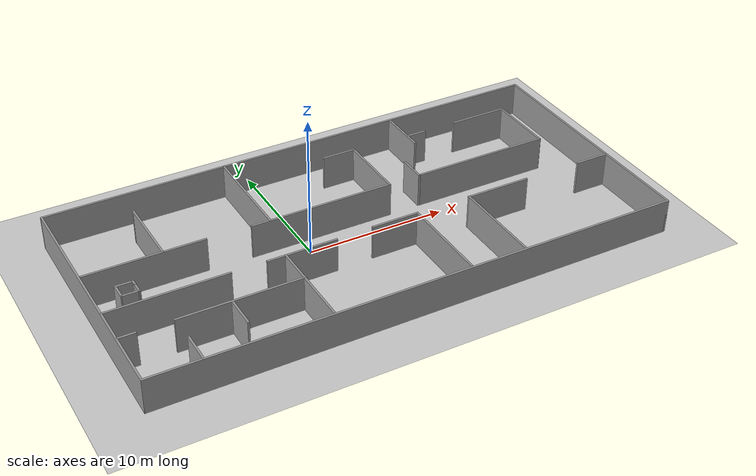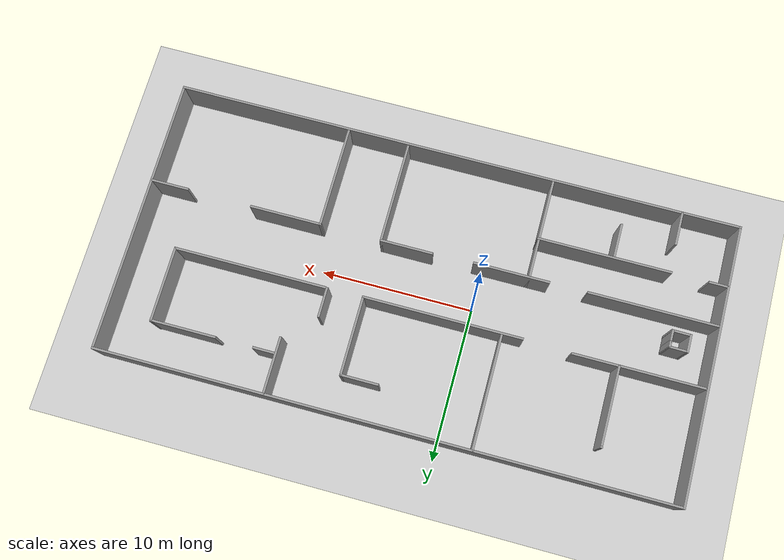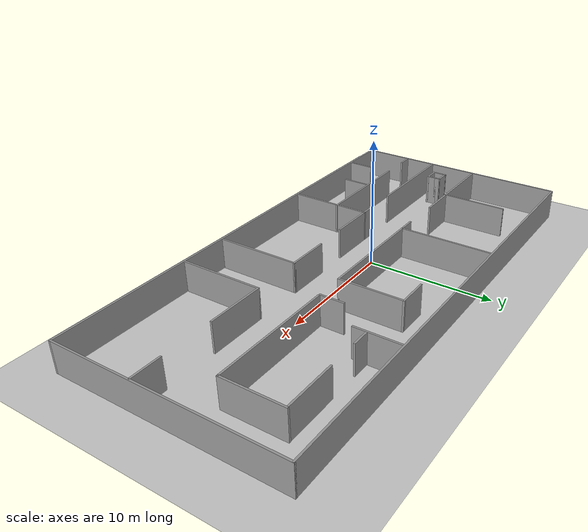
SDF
<sdf version="1.7">
 <world name="default">
  <light name="sun" type="directional">
   <pose>0 0 10 0 -0 0</pose>
   <diffuse>0.8 0.8 0.8 1</diffuse>
   <specular>0.2 0.2 0.2 1</specular>
   <attenuation>
    <range>1000</range>
    <constant>0.9</constant>
    <linear>0.01</linear>
    <quadratic>0.001</quadratic>
   </attenuation>
   <direction>-0.5 0.1 -0.9</direction>
   <spot><inner_angle>0</inner_angle><outer_angle>0</outer_angle><falloff>0</falloff></spot>
  </light>
  <model name="ground_plane">
   <static>1</static>
   <link name="link">
    <collision name="collision">
     <geometry><plane><normal>0 0 1</normal><size>100 100</size></plane></geometry>
     <surface><friction><ode><mu>100</mu><mu2>50</mu2></ode></friction></surface>
    </collision>
    <visual name="visual">
     <cast_shadows>0</cast_shadows>
     <geometry><plane><normal>0 0 1</normal><size>100 100</size></plane></geometry>
     <material>
      <script><uri>file://media/materials/scripts/gazebo.material</uri><name>Gazebo/Grey</name></script>
     </material>
    </visual>
   </link>
  </model>
  <gravity>0 0 -9.8</gravity>
  <magnetic_field>6e-06 2.3e-05 -4.2e-05</magnetic_field>
  <atmosphere type="adiabatic"/>
  <physics type="ode">
   <max_step_size>0.001</max_step_size>
   <real_time_factor>1</real_time_factor>
   <real_time_update_rate>1000</real_time_update_rate>
  </physics>
  <scene><ambient>0.4 0.4 0.4 1</ambient><background>0.7 0.7 0.7 1</background><shadows>1</shadows></scene>
  <spherical_coordinates>
   <surface_model>EARTH_WGS84</surface_model>
   <latitude_deg>0</latitude_deg>
   <longitude_deg>0</longitude_deg>
   <elevation>0</elevation>
   <heading_deg>0</heading_deg>
  </spherical_coordinates>
  <model name="room">
   <pose>3.41196 -0.178375 0 0 -0 0</pose>
   <link name="Wall_1">
    <collision name="Wall_1_Collision">
     <geometry><box><size>1.28848 0.15 2.5</size></box></geometry>
     <pose>0 0 1.25 0 -0 0</pose>
    </collision>
    <visual name="Wall_1_Visual">
     <pose>0 0 1.25 0 -0 0</pose>
     <geometry><box><size>1.28848 0.15 2.5</size></box></geometry>
     <material>
      <script><uri>file://media/materials/scripts/gazebo.material</uri><name>Gazebo/Grey</name></script>
      <ambient>1 1 1 1</ambient>
     </material>
     <meta><layer>0</layer></meta>
    </visual>
    <pose>-16.4134 -1.35414 0 0 -0 -0.011617</pose>
   </link>
   <link name="Wall_13">
    <collision name="Wall_13_Collision">
     <geometry><box><size>18.25 0.15 2.5</size></box></geometry>
     <pose>0 0 1.25 0 -0 0</pose>
    </collision>
    <visual name="Wall_13_Visual">
     <pose>0 0 1.25 0 -0 0</pose>
     <geometry><box><size>18.25 0.15 2.5</size></box></geometry>
     <material>
      <script><uri>file://media/materials/scripts/gazebo.material</uri><name>Gazebo/Grey</name></script>
      <ambient>1 1 1 1</ambient>
     </material>
     <meta><layer>0</layer></meta>
    </visual>
    <pose>-18.675 -0 0 0 -0 -1.5708</pose>
   </link>
   <link name="Wall_14">
    <collision name="Wall_14_Collision">
     <geometry><box><size>37.5 0.15 2.5</size></box></geometry>
     <pose>0 0 1.25 0 -0 0</pose>
    </collision>
    <visual name="Wall_14_Visual">
     <pose>0 0 1.25 0 -0 0</pose>
     <geometry><box><size>37.5 0.15 2.5</size></box></geometry>
     <material>
      <script><uri>file://media/materials/scripts/gazebo.material</uri><name>Gazebo/Grey</name></script>
      <ambient>1 1 1 1</ambient>
     </material>
     <meta><layer>0</layer></meta>
    </visual>
    <pose>0 -9.05 0 0 -0 0</pose>
   </link>
   <link name="Wall_16">
    <collision name="Wall_16_Collision">
     <geometry><box><size>37.5 0.15 2.5</size></box></geometry>
     <pose>0 0 1.25 0 -0 0</pose>
    </collision>
    <visual name="Wall_16_Visual">
     <pose>0 0 1.25 0 -0 0</pose>
     <geometry><box><size>37.5 0.15 2.5</size></box></geometry>
     <material>
      <script><uri>file://media/materials/scripts/gazebo.material</uri><name>Gazebo/Grey</name></script>
      <ambient>1 1 1 1</ambient>
     </material>
     <meta><layer>0</layer></meta>
    </visual>
    <pose>0 9.05 0 0 -0 0</pose>
   </link>
   <link name="Wall_17">
    <collision name="Wall_17_Collision">
     <geometry><box><size>18.25 0.15 2.5</size></box></geometry>
     <pose>0 0 1.25 0 -0 0</pose>
    </collision>
    <visual name="Wall_17_Visual">
     <pose>0 0 1.25 0 -0 0</pose>
     <geometry><box><size>18.25 0.15 2.5</size></box></geometry>
     <material>
      <script><uri>file://media/materials/scripts/gazebo.material</uri><name>Gazebo/Grey</name></script>
      <ambient>1 1 1 1</ambient>
     </material>
     <meta><layer>0</layer></meta>
    </visual>
    <pose>18.675 -0 0 0 -0 -1.5708</pose>
   </link>
   <link name="Wall_19">
    <collision name="Wall_19_Collision">
     <geometry><box><size>8.5 0.15 2.5</size></box></geometry>
     <pose>0 0 1.25 0 -0 0</pose>
    </collision>
    <visual name="Wall_19_Visual">
     <pose>0 0 1.25 0 -0 0</pose>
     <geometry><box><size>8.5 0.15 2.5</size></box></geometry>
     <material>
      <script><uri>file://media/materials/scripts/gazebo.material</uri><name>Gazebo/Grey</name></script>
      <ambient>1 1 1 1</ambient>
     </material>
     <meta><layer>0</layer></meta>
    </visual>
    <pose>-14.4286 -2.36507 0 0 -0 0</pose>
   </link>
   <link name="Wall_2">
    <collision name="Wall_2_Collision">
     <geometry><box><size>0.866475 0.15 2.5</size></box></geometry>
     <pose>0 0 1.25 0 -0 0</pose>
    </collision>
    <visual name="Wall_2_Visual">
     <pose>0 0 1.25 0 -0 0</pose>
     <geometry><box><size>0.866475 0.15 2.5</size></box></geometry>
     <material>
      <script><uri>file://media/materials/scripts/gazebo.material</uri><name>Gazebo/Grey</name></script>
      <ambient>1 1 1 1</ambient>
     </material>
     <meta><layer>0</layer></meta>
    </visual>
    <pose>-15.8574 -1.00252 0 0 -0 1.5708</pose>
   </link>
   <link name="Wall_21">
    <collision name="Wall_21_Collision">
     <geometry><box><size>8.5 0.15 2.5</size></box></geometry>
     <pose>0 0 1.25 0 -0 0</pose>
    </collision>
    <visual name="Wall_21_Visual">
     <pose>0 0 1.25 0 -0 0</pose>
     <geometry><box><size>8.5 0.15 2.5</size></box></geometry>
     <material>
      <script><uri>file://media/materials/scripts/gazebo.material</uri><name>Gazebo/Grey</name></script>
      <ambient>1 1 1 1</ambient>
     </material>
     <meta><layer>0</layer></meta>
    </visual>
    <pose>-14.3331 1.68173 0 0 -0 0</pose>
   </link>
   <link name="Wall_23">
    <collision name="Wall_23_Collision">
     <geometry><box><size>5 0.15 2.5</size></box></geometry>
     <pose>0 0 1.25 0 -0 0</pose>
    </collision>
    <visual name="Wall_23_Visual">
     <pose>0 0 1.25 0 -0 0</pose>
     <geometry><box><size>5 0.15 2.5</size></box></geometry>
     <material>
      <script><uri>file://media/materials/scripts/gazebo.material</uri><name>Gazebo/Grey</name></script>
      <ambient>1 1 1 1</ambient>
     </material>
     <meta><layer>0</layer></meta>
    </visual>
    <pose>-5.26034 -2.36995 0 0 -0 0</pose>
   </link>
   <link name="Wall_25">
    <collision name="Wall_25_Collision">
     <geometry><box><size>6.75 0.15 2.5</size></box></geometry>
     <pose>0 0 1.25 0 -0 0</pose>
    </collision>
    <visual name="Wall_25_Visual">
     <pose>0 0 1.25 0 -0 0</pose>
     <geometry><box><size>6.75 0.15 2.5</size></box></geometry>
     <material>
      <script><uri>file://media/materials/scripts/gazebo.material</uri><name>Gazebo/Grey</name></script>
      <ambient>1 1 1 1</ambient>
     </material>
     <meta><layer>0</layer></meta>
    </visual>
    <pose>-6.4241 -5.66995 0 0 -0 -1.5708</pose>
   </link>
   <link name="Wall_27">
    <collision name="Wall_27_Collision">
     <geometry><box><size>8.75 0.15 2.5</size></box></geometry>
     <pose>0 0 1.25 0 -0 0</pose>
    </collision>
    <visual name="Wall_27_Visual">
     <pose>0 0 1.25 0 -0 0</pose>
     <geometry><box><size>8.75 0.15 2.5</size></box></geometry>
     <material>
      <script><uri>file://media/materials/scripts/gazebo.material</uri><name>Gazebo/Grey</name></script>
      <ambient>1 1 1 1</ambient>
     </material>
     <meta><layer>0</layer></meta>
    </visual>
    <pose>-10.6862 -4.99448 0 0 -0 0</pose>
   </link>
   <link name="Wall_3">
    <collision name="Wall_3_Collision">
     <geometry><box><size>0.5 0.15 2.5</size></box></geometry>
     <pose>0 0 1.25 0 -0 0</pose>
    </collision>
    <visual name="Wall_3_Visual">
     <pose>0 0 1.25 0 -0 0</pose>
     <geometry><box><size>0.5 0.15 2.5</size></box></geometry>
     <material>
      <script><uri>file://media/materials/scripts/gazebo.material</uri><name>Gazebo/Grey</name></script>
      <ambient>1 1 1 1</ambient>
     </material>
     <meta><layer>0</layer></meta>
    </visual>
    <pose>-15.8574 -0.469279 0 0 -0 1.5708</pose>
   </link>
   <link name="Wall_30">
    <collision name="Wall_30_Collision">
     <geometry><box><size>1.25 0.15 2.5</size></box></geometry>
     <pose>0 0 1.25 0 -0 0</pose>
    </collision>
    <visual name="Wall_30_Visual">
     <pose>0 0 1.25 0 -0 0</pose>
     <geometry><box><size>1.25 0.15 2.5</size></box></geometry>
     <material>
      <script><uri>file://media/materials/scripts/gazebo.material</uri><name>Gazebo/Grey</name></script>
      <ambient>1 1 1 1</ambient>
     </material>
     <meta><layer>0</layer></meta>
    </visual>
    <pose>-18.0355 -4.99448 0 0 -0 0</pose>
   </link>
   <link name="Wall_32">
    <collision name="Wall_32_Collision">
     <geometry><box><size>2.25 0.15 2.5</size></box></geometry>
     <pose>0 0 1.25 0 -0 0</pose>
    </collision>
    <visual name="Wall_32_Visual">
     <pose>0 0 1.25 0 -0 0</pose>
     <geometry><box><size>2.25 0.15 2.5</size></box></geometry>
     <material>
      <script><uri>file://media/materials/scripts/gazebo.material</uri><name>Gazebo/Grey</name></script>
      <ambient>1 1 1 1</ambient>
     </material>
     <meta><layer>0</layer></meta>
    </visual>
    <pose>-14.901 -7.96688 0 0 -0 1.5708</pose>
   </link>
   <link name="Wall_34">
    <collision name="Wall_34_Collision">
     <geometry><box><size>2.25 0.15 2.5</size></box></geometry>
     <pose>0 0 1.25 0 -0 0</pose>
    </collision>
    <visual name="Wall_34_Visual">
     <pose>0 0 1.25 0 -0 0</pose>
     <geometry><box><size>2.25 0.15 2.5</size></box></geometry>
     <material>
      <script><uri>file://media/materials/scripts/gazebo.material</uri><name>Gazebo/Grey</name></script>
      <ambient>1 1 1 1</ambient>
     </material>
     <meta><layer>0</layer></meta>
    </visual>
    <pose>-11.3014 -6.19376 0 0 -0 -1.5708</pose>
   </link>
   <link name="Wall_39">
    <collision name="Wall_39_Collision">
     <geometry><box><size>0.16 0.15 2.5</size></box></geometry>
     <pose>0 0 1.25 0 -0 0</pose>
    </collision>
    <visual name="Wall_39_Visual">
     <pose>0 0 1.25 0 -0 0</pose>
     <geometry><box><size>0.16 0.15 2.5</size></box></geometry>
     <material>
      <script><uri>file://media/materials/scripts/gazebo.material</uri><name>Gazebo/Grey</name></script>
      <ambient>1 1 1 1</ambient>
     </material>
     <meta><layer>0</layer></meta>
    </visual>
    <pose>-13.1164 6.8073 0 0 -0 0</pose>
   </link>
   <link name="Wall_4">
    <collision name="Wall_4_Collision">
     <geometry><box><size>1.27525 0.15 2.5</size></box></geometry>
     <pose>0 0 1.25 0 -0 0</pose>
    </collision>
    <visual name="Wall_4_Visual">
     <pose>0 0 1.25 0 -0 0</pose>
     <geometry><box><size>1.27525 0.15 2.5</size></box></geometry>
     <material>
      <script><uri>file://media/materials/scripts/gazebo.material</uri><name>Gazebo/Grey</name></script>
      <ambient>1 1 1 1</ambient>
     </material>
     <meta><layer>0</layer></meta>
    </visual>
    <pose>-16.42 -0.287666 0 0 -0 3.12984</pose>
   </link>
   <link name="Wall_40">
    <collision name="Wall_40_Collision">
     <geometry><box><size>5.25 0.15 2.5</size></box></geometry>
     <pose>0 0 1.25 0 -0 0</pose>
    </collision>
    <visual name="Wall_40_Visual">
     <pose>0 0 1.25 0 -0 0</pose>
     <geometry><box><size>5.25 0.15 2.5</size></box></geometry>
     <material>
      <script><uri>file://media/materials/scripts/gazebo.material</uri><name>Gazebo/Grey</name></script>
      <ambient>1 1 1 1</ambient>
     </material>
     <meta><layer>0</layer></meta>
    </visual>
    <pose>-13.1114 4.2573 0 0 -0 -1.5708</pose>
   </link>
   <link name="Wall_42">
    <collision name="Wall_42_Collision">
     <geometry><box><size>10.4307 0.15 2.5</size></box></geometry>
     <pose>0 0 1.25 0 -0 0</pose>
    </collision>
    <visual name="Wall_42_Visual">
     <pose>0 0 1.25 0 -0 0</pose>
     <geometry><box><size>10.4307 0.15 2.5</size></box></geometry>
     <material>
      <script><uri>file://media/materials/scripts/gazebo.material</uri><name>Gazebo/Grey</name></script>
      <ambient>1 1 1 1</ambient>
     </material>
     <meta><layer>0</layer></meta>
    </visual>
    <pose>-1.79057 1.57736 0 0 -0 0</pose>
   </link>
   <link name="Wall_46">
    <collision name="Wall_46_Collision">
     <geometry><box><size>7.5 0.15 2.5</size></box></geometry>
     <pose>0 0 1.25 0 -0 0</pose>
    </collision>
    <visual name="Wall_46_Visual">
     <pose>0 0 1.25 0 -0 0</pose>
     <geometry><box><size>7.5 0.15 2.5</size></box></geometry>
     <material>
      <script><uri>file://media/materials/scripts/gazebo.material</uri><name>Gazebo/Grey</name></script>
      <ambient>1 1 1 1</ambient>
     </material>
     <meta><layer>0</layer></meta>
    </visual>
    <pose>-5.62763 5.31865 0 0 -0 -1.5708</pose>
   </link>
   <link name="Wall_48">
    <collision name="Wall_48_Collision">
     <geometry><box><size>10 0.15 2.5</size></box></geometry>
     <pose>0 0 1.25 0 -0 0</pose>
    </collision>
    <visual name="Wall_48_Visual">
     <pose>0 0 1.25 0 -0 0</pose>
     <geometry><box><size>10 0.15 2.5</size></box></geometry>
     <material>
      <script><uri>file://media/materials/scripts/gazebo.material</uri><name>Gazebo/Grey</name></script>
      <ambient>1 1 1 1</ambient>
     </material>
     <meta><layer>0</layer></meta>
    </visual>
    <pose>10.7845 1.61142 0 0 -0 0</pose>
   </link>
   <link name="Wall_52">
    <collision name="Wall_52_Collision">
     <geometry><box><size>5.25 0.15 2.5</size></box></geometry>
     <pose>0 0 1.25 0 -0 0</pose>
    </collision>
    <visual name="Wall_52_Visual">
     <pose>0 0 1.25 0 -0 0</pose>
     <geometry><box><size>5.25 0.15 2.5</size></box></geometry>
     <material>
      <script><uri>file://media/materials/scripts/gazebo.material</uri><name>Gazebo/Grey</name></script>
      <ambient>1 1 1 1</ambient>
     </material>
     <meta><layer>0</layer></meta>
    </visual>
    <pose>3.34977 4.12737 0 0 -0 1.5708</pose>
   </link>
   <link name="Wall_53">
    <collision name="Wall_53_Collision">
     <geometry><box><size>2.5 0.15 2.5</size></box></geometry>
     <pose>0 0 1.25 0 -0 0</pose>
    </collision>
    <visual name="Wall_53_Visual">
     <pose>0 0 1.25 0 -0 0</pose>
     <geometry><box><size>2.5 0.15 2.5</size></box></geometry>
     <material>
      <script><uri>file://media/materials/scripts/gazebo.material</uri><name>Gazebo/Grey</name></script>
      <ambient>1 1 1 1</ambient>
     </material>
     <meta><layer>0</layer></meta>
    </visual>
    <pose>2.17477 6.67736 0 0 -0 3.14159</pose>
   </link>
   <link name="Wall_56">
    <collision name="Wall_56_Collision">
     <geometry><box><size>3.75 0.15 2.5</size></box></geometry>
     <pose>0 0 1.25 0 -0 0</pose>
    </collision>
    <visual name="Wall_56_Visual">
     <pose>0 0 1.25 0 -0 0</pose>
     <geometry><box><size>3.75 0.15 2.5</size></box></geometry>
     <material>
      <script><uri>file://media/materials/scripts/gazebo.material</uri><name>Gazebo/Grey</name></script>
      <ambient>1 1 1 1</ambient>
     </material>
     <meta><layer>0</layer></meta>
    </visual>
    <pose>7.60898 7.21915 0 0 -0 -1.5708</pose>
   </link>
   <link name="Wall_6">
    <collision name="Wall_6_Collision">
     <geometry><box><size>1.21647 0.15 2.5</size></box></geometry>
     <pose>0 0 1.25 0 -0 0</pose>
    </collision>
    <visual name="Wall_6_Visual">
     <pose>0 0 1.25 0 -0 0</pose>
     <geometry><box><size>1.21647 0.15 2.5</size></box></geometry>
     <material>
      <script><uri>file://media/materials/scripts/gazebo.material</uri><name>Gazebo/Grey</name></script>
      <ambient>1 1 1 1</ambient>
     </material>
     <meta><layer>0</layer></meta>
    </visual>
    <pose>-16.9958 -0.814292 0 0 -0 -1.5708</pose>
   </link>
   <link name="Wall_60">
    <collision name="Wall_60_Collision">
     <geometry><box><size>2 0.15 2.5</size></box></geometry>
     <pose>0 0 1.25 0 -0 0</pose>
    </collision>
    <visual name="Wall_60_Visual">
     <pose>0 0 1.25 0 -0 0</pose>
     <geometry><box><size>2 0.15 2.5</size></box></geometry>
     <material>
      <script><uri>file://media/materials/scripts/gazebo.material</uri><name>Gazebo/Grey</name></script>
      <ambient>1 1 1 1</ambient>
     </material>
     <meta><layer>0</layer></meta>
    </visual>
    <pose>5.70588 2.56492 0 0 -0 -1.5708</pose>
   </link>
   <link name="Wall_65">
    <collision name="Wall_65_Collision">
     <geometry><box><size>5 0.15 2.5</size></box></geometry>
     <pose>0 0 1.25 0 -0 0</pose>
    </collision>
    <visual name="Wall_65_Visual">
     <pose>0 0 1.25 0 -0 0</pose>
     <geometry><box><size>5 0.15 2.5</size></box></geometry>
     <material>
      <script><uri>file://media/materials/scripts/gazebo.material</uri><name>Gazebo/Grey</name></script>
      <ambient>1 1 1 1</ambient>
     </material>
     <meta><layer>0</layer></meta>
    </visual>
    <pose>15.7384 4.04157 0 0 -0 -1.5708</pose>
   </link>
   <link name="Wall_67">
    <collision name="Wall_67_Collision">
     <geometry><box><size>4.25 0.15 2.5</size></box></geometry>
     <pose>0 0 1.25 0 -0 0</pose>
    </collision>
    <visual name="Wall_67_Visual">
     <pose>0 0 1.25 0 -0 0</pose>
     <geometry><box><size>4.25 0.15 2.5</size></box></geometry>
     <material>
      <script><uri>file://media/materials/scripts/gazebo.material</uri><name>Gazebo/Grey</name></script>
      <ambient>1 1 1 1</ambient>
     </material>
     <meta><layer>0</layer></meta>
    </visual>
    <pose>13.6178 6.44513 0 0 -0 0</pose>
   </link>
   <link name="Wall_69">
    <collision name="Wall_69_Collision">
     <geometry><box><size>1.5 0.15 2.5</size></box></geometry>
     <pose>0 0 1.25 0 -0 0</pose>
    </collision>
    <visual name="Wall_69_Visual">
     <pose>0 0 1.25 0 -0 0</pose>
     <geometry><box><size>1.5 0.15 2.5</size></box></geometry>
     <material>
      <script><uri>file://media/materials/scripts/gazebo.material</uri><name>Gazebo/Grey</name></script>
      <ambient>1 1 1 1</ambient>
     </material>
     <meta><layer>0</layer></meta>
    </visual>
    <pose>8.34294 6.44347 0 0 -0 0</pose>
   </link>
   <link name="Wall_71">
    <collision name="Wall_71_Collision">
     <geometry><box><size>3.5 0.15 2.5</size></box></geometry>
     <pose>0 0 1.25 0 -0 0</pose>
    </collision>
    <visual name="Wall_71_Visual">
     <pose>0 0 1.25 0 -0 0</pose>
     <geometry><box><size>3.5 0.15 2.5</size></box></geometry>
     <material>
      <script><uri>file://media/materials/scripts/gazebo.material</uri><name>Gazebo/Grey</name></script>
      <ambient>1 1 1 1</ambient>
     </material>
     <meta><layer>0</layer></meta>
    </visual>
    <pose>1.59819 -2.27365 0 0 -0 0</pose>
   </link>
   <link name="Wall_72">
    <collision name="Wall_72_Collision">
     <geometry><box><size>6.75 0.15 2.5</size></box></geometry>
     <pose>0 0 1.25 0 -0 0</pose>
    </collision>
    <visual name="Wall_72_Visual">
     <pose>0 0 1.25 0 -0 0</pose>
     <geometry><box><size>6.75 0.15 2.5</size></box></geometry>
     <material>
      <script><uri>file://media/materials/scripts/gazebo.material</uri><name>Gazebo/Grey</name></script>
      <ambient>1 1 1 1</ambient>
     </material>
     <meta><layer>0</layer></meta>
    </visual>
    <pose>3.27318 -5.57365 0 0 -0 -1.5708</pose>
   </link>
   <link name="Wall_74">
    <collision name="Wall_74_Collision">
     <geometry><box><size>6.75 0.15 2.5</size></box></geometry>
     <pose>0 0 1.25 0 -0 0</pose>
    </collision>
    <visual name="Wall_74_Visual">
     <pose>0 0 1.25 0 -0 0</pose>
     <geometry><box><size>6.75 0.15 2.5</size></box></geometry>
     <material>
      <script><uri>file://media/materials/scripts/gazebo.material</uri><name>Gazebo/Grey</name></script>
      <ambient>1 1 1 1</ambient>
     </material>
     <meta><layer>0</layer></meta>
    </visual>
    <pose>7.30657 -5.59685 0 0 -0 -1.5708</pose>
   </link>
   <link name="Wall_76">
    <collision name="Wall_76_Collision">
     <geometry><box><size>4.75 0.15 2.5</size></box></geometry>
     <pose>0 0 1.25 0 -0 0</pose>
    </collision>
    <visual name="Wall_76_Visual">
     <pose>0 0 1.25 0 -0 0</pose>
     <geometry><box><size>4.75 0.15 2.5</size></box></geometry>
     <material>
      <script><uri>file://media/materials/scripts/gazebo.material</uri><name>Gazebo/Grey</name></script>
      <ambient>1 1 1 1</ambient>
     </material>
     <meta><layer>0</layer></meta>
    </visual>
    <pose>9.60658 -2.29685 0 0 -0 0</pose>
   </link>
   <link name="Wall_78">
    <collision name="Wall_78_Collision">
     <geometry><box><size>2.5 0.15 2.5</size></box></geometry>
     <pose>0 0 1.25 0 -0 0</pose>
    </collision>
    <visual name="Wall_78_Visual">
     <pose>0 0 1.25 0 -0 0</pose>
     <geometry><box><size>2.5 0.15 2.5</size></box></geometry>
     <material>
      <script><uri>file://media/materials/scripts/gazebo.material</uri><name>Gazebo/Grey</name></script>
      <ambient>1 1 1 1</ambient>
     </material>
     <meta><layer>0</layer></meta>
    </visual>
    <pose>17.4181 -2.34364 0 0 -0 0</pose>
   </link>
   <static>1</static>
  </model>
 </world>
</sdf>
